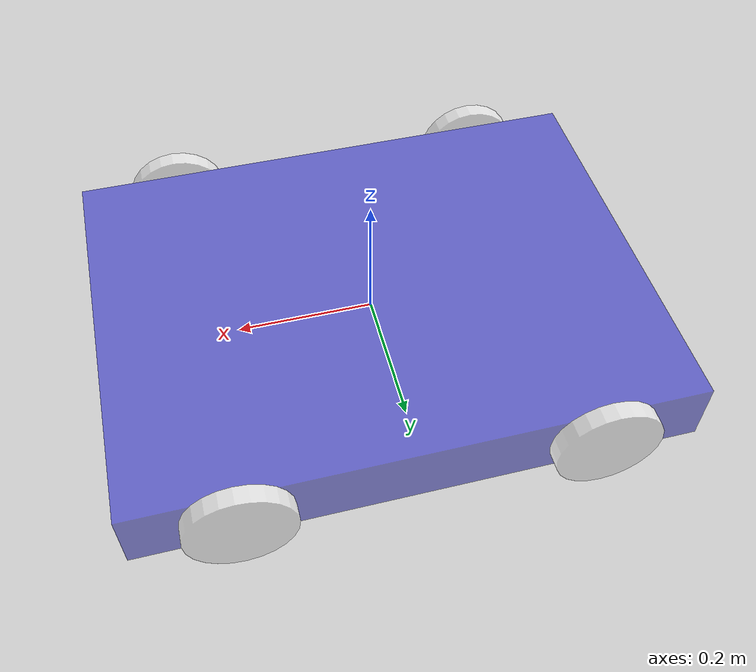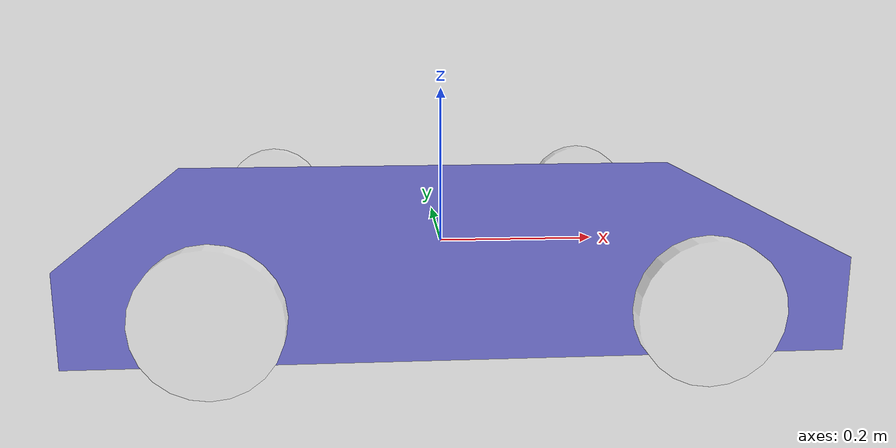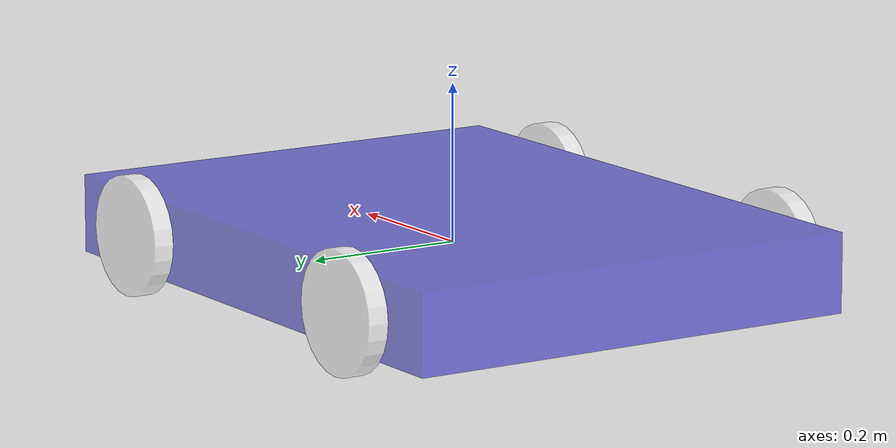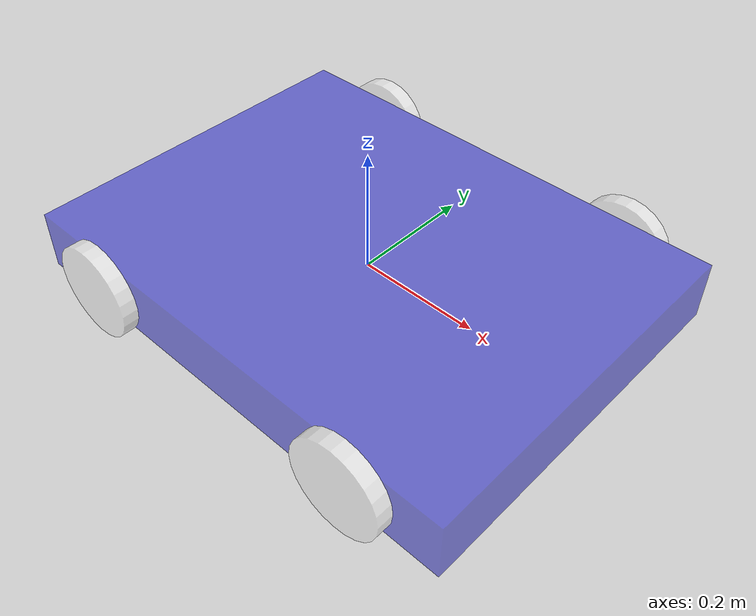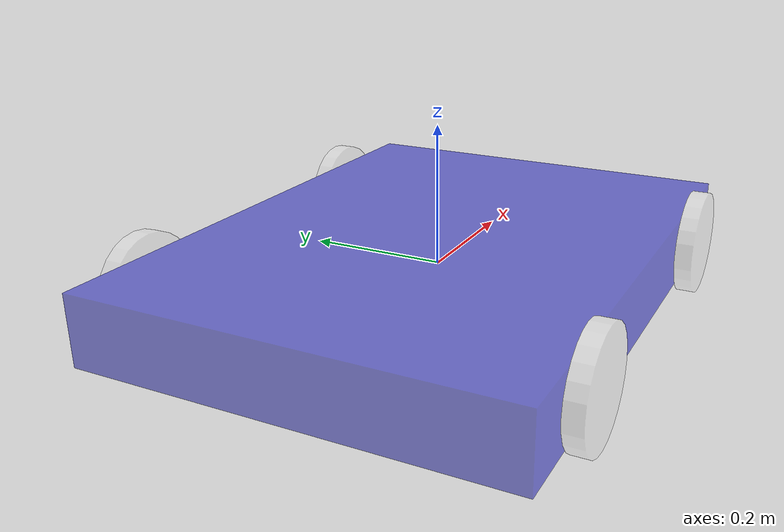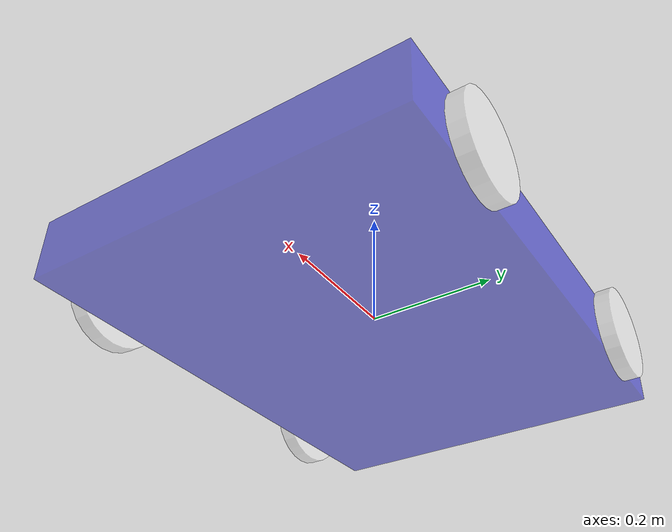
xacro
<?xml version="1.0"?>
<robot xmlns:xacro="http://www.ros.org/wiki/xacro" name="kitbot">

  <material name="blue">
    <color rgba="0 0 0.8 .5"/>
  </material>
  <material name="black">
    <color rgba="0 0 0 0.5"/>
  </material>
  <material name="white">
    <color rgba="1 1 1 .5"/>
  </material>
  <material name="green">
    <color rgba="0 1 0 0.5"/>
  </material>

  <xacro:property name="baseLength" value="0.8" />
  <xacro:property name="baseWidth" value="0.6" />
  <xacro:property name="baseHeight" value="0.1" />

  <xacro:property name="baseMass" value="27" />
  <xacro:property name="wheelMass" value="0.453592" />

  <xacro:property name="wheelWidth" value="0.0254" />
  <xacro:property name="wheelRadius" value="0.0762" />

  <xacro:property name="wheelOffset" value="0.25" />

  <link name="base_link">
    <visual>
      <geometry>
        <box size="${baseLength} ${baseWidth} ${baseHeight}"/>
      </geometry>
      <material name="blue"/>
    </visual>
    <collision>
      <geometry>
        <box size="${baseLength} ${baseWidth} ${baseHeight}"/>
      </geometry>
    </collision>
    <inertial>
      <mass value="${baseMass}"/>
      <inertia ixx="${(1/12) * baseMass * ((baseHeight * baseHeight) + (baseLength * baseLength))}" ixy="0.0" ixz="0.0" iyy="${(1/12) * baseMass * ((baseWidth * baseWidth) + (baseLength * baseLength))}" iyz="0.0" izz="${(1/12) * baseMass * ((baseWidth * baseWidth) + (baseHeight * baseHeight))}"/>
    </inertial>
  </link>

  <link name="front_right_wheel">
    <visual>
      <geometry>
        <cylinder length="${wheelWidth}" radius="${wheelRadius}"/>
      </geometry>
      <origin rpy="0 1.57075 1.57075" xyz="0 ${-wheelWidth/2} 0"/>
      <material name="white"/>
    </visual>
    <collision>
      <geometry>
        <cylinder length="${wheelWidth}" radius="${wheelRadius}"/>
      </geometry>
      <origin rpy="0 1.57075 1.57075" xyz="0 ${-wheelWidth/2} 0"/>
    </collision>
    <inertial>
      <mass value="${wheelMass}"/>
      <inertia ixx="0.4" ixy="0.0" ixz="0.0" iyy="0.4" iyz="0.0" izz="0.2"/>
    </inertial>
  </link>

  <joint name="base_to_front_right_wheel" type="continuous">
    <parent link="base_link"/>
    <child link="front_right_wheel"/>
    <axis xyz="0 1 0"/>
    <origin xyz="${wheelOffset} ${-baseWidth /2} 0"/>
  </joint>

  <link name="back_right_wheel">
    <visual>
      <geometry>
        <cylinder length="${wheelWidth}" radius="${wheelRadius}"/>
      </geometry>
      <origin rpy="0 1.57075 1.57075" xyz="0 ${-wheelWidth/2} 0"/>
      <material name="white"/>
    </visual>
    <collision>
      <geometry>
        <cylinder length="${wheelWidth}" radius="${wheelRadius}"/>
      </geometry>
      <origin rpy="0 1.57075 1.57075" xyz="0 ${-wheelWidth/2} 0"/>
    </collision>
    <inertial>
      <mass value="${wheelMass}"/>
      <inertia ixx="0.4" ixy="0.0" ixz="0.0" iyy="0.4" iyz="0.0" izz="0.2"/>
    </inertial>
  </link>

  <joint name="base_to_back_right_wheel" type="continuous">
    <parent link="base_link"/>
    <child link="back_right_wheel"/>
    <axis xyz="0 1 0"/>
    <origin xyz="${-wheelOffset} ${-baseWidth /2} 0"/>
  </joint>

  <link name="front_left_wheel">
    <visual>
      <geometry>
        <cylinder length="${wheelWidth}" radius="${wheelRadius}"/>
      </geometry>
      <origin rpy="0 1.57075 1.57075" xyz="0 ${wheelWidth/2} 0"/>
      <material name="white"/>
    </visual>
    <collision>
      <geometry>
        <cylinder length="${wheelWidth}" radius="${wheelRadius}"/>
      </geometry>
      <origin rpy="0 1.57075 1.57075" xyz="0 ${wheelWidth/2} 0"/>
    </collision>
    <inertial>
      <mass value="${wheelMass}"/>
      <inertia ixx="0.4" ixy="0.0" ixz="0.0" iyy="0.4" iyz="0.0" izz="0.2"/>
    </inertial>
  </link>

  <joint name="base_to_front_left_wheel" type="continuous">
    <parent link="base_link"/>
    <child link="front_left_wheel"/>
    <axis xyz="0 1 0"/>
    <origin xyz="${wheelOffset} ${baseWidth /2} 0"/>
  </joint>

  <link name="back_left_wheel">
    <visual>
      <geometry>
        <cylinder length="${wheelWidth}" radius="${wheelRadius}"/>
      </geometry>
      <origin rpy="0 1.57075 1.57075" xyz="0 ${wheelWidth/2} 0"/>
      <material name="white"/>
    </visual>
    <collision>
      <geometry>
        <cylinder length="${wheelWidth}" radius="${wheelRadius}"/>
      </geometry>
      <origin rpy="0 1.57075 1.57075" xyz="0 ${-wheelWidth/2} 0"/>
    </collision>
    <inertial>
      <mass value="${wheelMass}"/>
      <inertia ixx="0.4" ixy="0.0" ixz="0.0" iyy="0.4" iyz="0.0" izz="0.2"/>
    </inertial>
  </link>

  <joint name="base_to_back_left_wheel" type="continuous">
    <parent link="base_link"/>
    <child link="back_left_wheel"/>
    <axis xyz="0 1 0"/>
    <origin xyz="${-wheelOffset} ${baseWidth /2} 0"/>
  </joint>

</robot>
